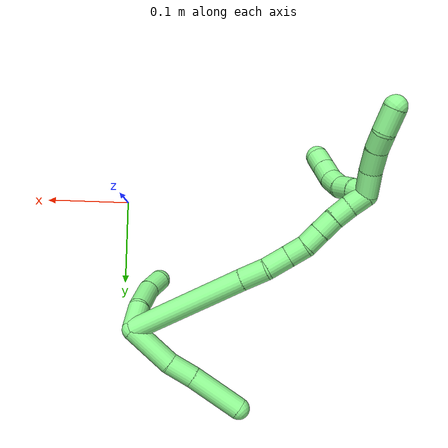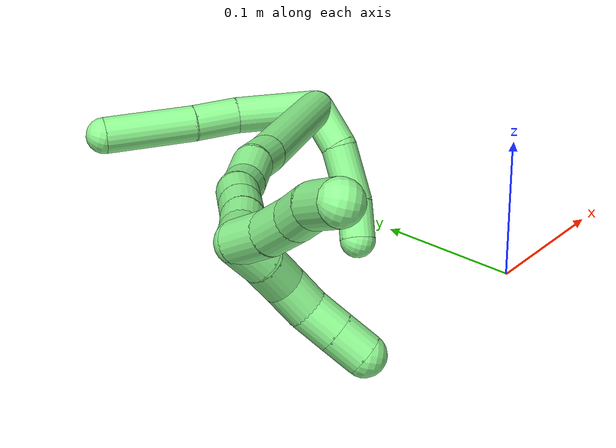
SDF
<sdf version="1.7">
 <world name="default">
  <model name="13">
   <static>0</static>
   <link name="13">
    <collision name="collision-cylinder-e_1_2_8">
     <pose>-0.004577 0.007889 0.026706 -0.287227 -0.162894 0.023607</pose>
     <geometry><cylinder><radius>0.0125</radius><length>0.056441</length></cylinder></geometry>
     <surface>
      <friction><ode><mu>1.16</mu><mu2>1.16</mu2><slip1>0</slip1><slip2>0</slip2></ode></friction>
      <contact><ode><kp>1e+06</kp><kd>1</kd><max_vel>0</max_vel><min_depth>0.001</min_depth></ode></contact>
     </surface>
    </collision>
    <visual name="visual-cylinder-e_1_2_8">
     <pose>-0.004577 0.007889 0.026706 -0.287227 -0.162894 0.023607</pose>
     <geometry><cylinder><radius>0.0125</radius><length>0.056441</length></cylinder></geometry>
     <material><ambient>0.564706 0.984314 0.572549 1</ambient></material>
    </visual>
    <collision name="collision-cylinder-e_2_8_9">
     <pose>-0.014571 0.018836 0.067608 -0.2122 -0.357113 0.038437</pose>
     <geometry><cylinder><radius>0.0125</radius><length>0.030998</length></cylinder></geometry>
     <surface>
      <friction><ode><mu>1.16</mu><mu2>1.16</mu2><slip1>0</slip1><slip2>0</slip2></ode></friction>
      <contact><ode><kp>1e+06</kp><kd>1</kd><max_vel>0</max_vel><min_depth>0.001</min_depth></ode></contact>
     </surface>
    </collision>
    <visual name="visual-cylinder-e_2_8_9">
     <pose>-0.014571 0.018836 0.067608 -0.2122 -0.357113 0.038437</pose>
     <geometry><cylinder><radius>0.0125</radius><length>0.030998</length></cylinder></geometry>
     <material><ambient>0.564706 0.984314 0.572549 1</ambient></material>
    </visual>
    <collision name="collision-cylinder-e_3_9_6">
     <pose>-0.028823 0.028352 0.111107 -0.216884 -0.286283 0.03138</pose>
     <geometry><cylinder><radius>0.0125</radius><length>0.062561</length></cylinder></geometry>
     <surface>
      <friction><ode><mu>1.16</mu><mu2>1.16</mu2><slip1>0</slip1><slip2>0</slip2></ode></friction>
      <contact><ode><kp>1e+06</kp><kd>1</kd><max_vel>0</max_vel><min_depth>0.001</min_depth></ode></contact>
     </surface>
    </collision>
    <visual name="visual-cylinder-e_3_9_6">
     <pose>-0.028823 0.028352 0.111107 -0.216884 -0.286283 0.03138</pose>
     <geometry><cylinder><radius>0.0125</radius><length>0.062561</length></cylinder></geometry>
     <material><ambient>0.564706 0.984314 0.572549 1</ambient></material>
    </visual>
    <collision name="collision-cylinder-e_1_2_10">
     <pose>-0.012711 0.003416 -0.009613 -2.8002 -0.894466 2.45159</pose>
     <geometry><cylinder><radius>0.0125</radius><length>0.032597</length></cylinder></geometry>
     <surface>
      <friction><ode><mu>1.16</mu><mu2>1.16</mu2><slip1>0</slip1><slip2>0</slip2></ode></friction>
      <contact><ode><kp>1e+06</kp><kd>1</kd><max_vel>0</max_vel><min_depth>0.001</min_depth></ode></contact>
     </surface>
    </collision>
    <visual name="visual-cylinder-e_1_2_10">
     <pose>-0.012711 0.003416 -0.009613 -2.8002 -0.894466 2.45159</pose>
     <geometry><cylinder><radius>0.0125</radius><length>0.032597</length></cylinder></geometry>
     <material><ambient>0.564706 0.984314 0.572549 1</ambient></material>
    </visual>
    <collision name="collision-cylinder-e_2_10_11">
     <pose>-0.040596 0.016667 -0.02826 -2.31372 -0.849057 1.59928</pose>
     <geometry><cylinder><radius>0.0125</radius><length>0.040429</length></cylinder></geometry>
     <surface>
      <friction><ode><mu>1.16</mu><mu2>1.16</mu2><slip1>0</slip1><slip2>0</slip2></ode></friction>
      <contact><ode><kp>1e+06</kp><kd>1</kd><max_vel>0</max_vel><min_depth>0.001</min_depth></ode></contact>
     </surface>
    </collision>
    <visual name="visual-cylinder-e_2_10_11">
     <pose>-0.040596 0.016667 -0.02826 -2.31372 -0.849057 1.59928</pose>
     <geometry><cylinder><radius>0.0125</radius><length>0.040429</length></cylinder></geometry>
     <material><ambient>0.564706 0.984314 0.572549 1</ambient></material>
    </visual>
    <collision name="collision-cylinder-e_3_11_5">
     <pose>-0.067594 0.032241 -0.040323 -2.05643 -1.06895 1.55238</pose>
     <geometry><cylinder><radius>0.0125</radius><length>0.026974</length></cylinder></geometry>
     <surface>
      <friction><ode><mu>1.16</mu><mu2>1.16</mu2><slip1>0</slip1><slip2>0</slip2></ode></friction>
      <contact><ode><kp>1e+06</kp><kd>1</kd><max_vel>0</max_vel><min_depth>0.001</min_depth></ode></contact>
     </surface>
    </collision>
    <visual name="visual-cylinder-e_3_11_5">
     <pose>-0.067594 0.032241 -0.040323 -2.05643 -1.06895 1.55238</pose>
     <geometry><cylinder><radius>0.0125</radius><length>0.026974</length></cylinder></geometry>
     <material><ambient>0.564706 0.984314 0.572549 1</ambient></material>
    </visual>
    <collision name="collision-cylinder-e_1_2_12">
     <pose>-0.055801 -0.030014 0.026552 0.84653 -0.947996 -0.454238</pose>
     <geometry><cylinder><radius>0.0125</radius><length>0.137398</length></cylinder></geometry>
     <surface>
      <friction><ode><mu>1.16</mu><mu2>1.16</mu2><slip1>0</slip1><slip2>0</slip2></ode></friction>
      <contact><ode><kp>1e+06</kp><kd>1</kd><max_vel>0</max_vel><min_depth>0.001</min_depth></ode></contact>
     </surface>
    </collision>
    <visual name="visual-cylinder-e_1_2_12">
     <pose>-0.055801 -0.030014 0.026552 0.84653 -0.947996 -0.454238</pose>
     <geometry><cylinder><radius>0.0125</radius><length>0.137398</length></cylinder></geometry>
     <material><ambient>0.564706 0.984314 0.572549 1</ambient></material>
    </visual>
    <collision name="collision-cylinder-e_2_12_13">
     <pose>-0.12314 -0.066909 0.059212 0.844784 -0.897673 -0.426346</pose>
     <geometry><cylinder><radius>0.0125</radius><length>0.029515</length></cylinder></geometry>
     <surface>
      <friction><ode><mu>1.16</mu><mu2>1.16</mu2><slip1>0</slip1><slip2>0</slip2></ode></friction>
      <contact><ode><kp>1e+06</kp><kd>1</kd><max_vel>0</max_vel><min_depth>0.001</min_depth></ode></contact>
     </surface>
    </collision>
    <visual name="visual-cylinder-e_2_12_13">
     <pose>-0.12314 -0.066909 0.059212 0.844784 -0.897673 -0.426346</pose>
     <geometry><cylinder><radius>0.0125</radius><length>0.029515</length></cylinder></geometry>
     <material><ambient>0.564706 0.984314 0.572549 1</ambient></material>
    </visual>
    <collision name="collision-cylinder-e_3_13_14">
     <pose>-0.147228 -0.078065 0.068742 0.895845 -1.15928 -0.609518</pose>
     <geometry><cylinder><radius>0.0125</radius><length>0.027384</length></cylinder></geometry>
     <surface>
      <friction><ode><mu>1.16</mu><mu2>1.16</mu2><slip1>0</slip1><slip2>0</slip2></ode></friction>
      <contact><ode><kp>1e+06</kp><kd>1</kd><max_vel>0</max_vel><min_depth>0.001</min_depth></ode></contact>
     </surface>
    </collision>
    <visual name="visual-cylinder-e_3_13_14">
     <pose>-0.147228 -0.078065 0.068742 0.895845 -1.15928 -0.609518</pose>
     <geometry><cylinder><radius>0.0125</radius><length>0.027384</length></cylinder></geometry>
     <material><ambient>0.564706 0.984314 0.572549 1</ambient></material>
    </visual>
    <collision name="collision-cylinder-e_4_14_15">
     <pose>-0.168622 -0.088114 0.075585 1.03588 -0.92177 -0.551485</pose>
     <geometry><cylinder><radius>0.0125</radius><length>0.022206</length></cylinder></geometry>
     <surface>
      <friction><ode><mu>1.16</mu><mu2>1.16</mu2><slip1>0</slip1><slip2>0</slip2></ode></friction>
      <contact><ode><kp>1e+06</kp><kd>1</kd><max_vel>0</max_vel><min_depth>0.001</min_depth></ode></contact>
     </surface>
    </collision>
    <visual name="visual-cylinder-e_4_14_15">
     <pose>-0.168622 -0.088114 0.075585 1.03588 -0.92177 -0.551485</pose>
     <geometry><cylinder><radius>0.0125</radius><length>0.022206</length></cylinder></geometry>
     <material><ambient>0.564706 0.984314 0.572549 1</ambient></material>
    </visual>
    <collision name="collision-cylinder-e_5_15_16">
     <pose>-0.186389 -0.098983 0.079422 1.48942 -1.05041 -0.9812</pose>
     <geometry><cylinder><radius>0.0125</radius><length>0.020565</length></cylinder></geometry>
     <surface>
      <friction><ode><mu>1.16</mu><mu2>1.16</mu2><slip1>0</slip1><slip2>0</slip2></ode></friction>
      <contact><ode><kp>1e+06</kp><kd>1</kd><max_vel>0</max_vel><min_depth>0.001</min_depth></ode></contact>
     </surface>
    </collision>
    <visual name="visual-cylinder-e_5_15_16">
     <pose>-0.186389 -0.098983 0.079422 1.48942 -1.05041 -0.9812</pose>
     <geometry><cylinder><radius>0.0125</radius><length>0.020565</length></cylinder></geometry>
     <material><ambient>0.564706 0.984314 0.572549 1</ambient></material>
    </visual>
    <collision name="collision-cylinder-e_6_16_17">
     <pose>-0.20431 -0.109367 0.080399 1.46502 -1.03712 -0.948415</pose>
     <geometry><cylinder><radius>0.0125</radius><length>0.020907</length></cylinder></geometry>
     <surface>
      <friction><ode><mu>1.16</mu><mu2>1.16</mu2><slip1>0</slip1><slip2>0</slip2></ode></friction>
      <contact><ode><kp>1e+06</kp><kd>1</kd><max_vel>0</max_vel><min_depth>0.001</min_depth></ode></contact>
     </surface>
    </collision>
    <visual name="visual-cylinder-e_6_16_17">
     <pose>-0.20431 -0.109367 0.080399 1.46502 -1.03712 -0.948415</pose>
     <geometry><cylinder><radius>0.0125</radius><length>0.020907</length></cylinder></geometry>
     <material><ambient>0.564706 0.984314 0.572549 1</ambient></material>
    </visual>
    <collision name="collision-cylinder-e_7_17_18">
     <pose>-0.222533 -0.119364 0.082447 1.26504 -1.07919 -0.827285</pose>
     <geometry><cylinder><radius>0.0125</radius><length>0.020925</length></cylinder></geometry>
     <surface>
      <friction><ode><mu>1.16</mu><mu2>1.16</mu2><slip1>0</slip1><slip2>0</slip2></ode></friction>
      <contact><ode><kp>1e+06</kp><kd>1</kd><max_vel>0</max_vel><min_depth>0.001</min_depth></ode></contact>
     </surface>
    </collision>
    <visual name="visual-cylinder-e_7_17_18">
     <pose>-0.222533 -0.119364 0.082447 1.26504 -1.07919 -0.827285</pose>
     <geometry><cylinder><radius>0.0125</radius><length>0.020925</length></cylinder></geometry>
     <material><ambient>0.564706 0.984314 0.572549 1</ambient></material>
    </visual>
    <collision name="collision-cylinder-e_8_18_1">
     <pose>-0.240339 -0.129671 0.086448 1.14854 -0.950054 -0.642467</pose>
     <geometry><cylinder><radius>0.0125</radius><length>0.0211</length></cylinder></geometry>
     <surface>
      <friction><ode><mu>1.16</mu><mu2>1.16</mu2><slip1>0</slip1><slip2>0</slip2></ode></friction>
      <contact><ode><kp>1e+06</kp><kd>1</kd><max_vel>0</max_vel><min_depth>0.001</min_depth></ode></contact>
     </surface>
    </collision>
    <visual name="visual-cylinder-e_8_18_1">
     <pose>-0.240339 -0.129671 0.086448 1.14854 -0.950054 -0.642467</pose>
     <geometry><cylinder><radius>0.0125</radius><length>0.0211</length></cylinder></geometry>
     <material><ambient>0.564706 0.984314 0.572549 1</ambient></material>
    </visual>
    <collision name="collision-cylinder-e_1_1_19">
     <pose>-0.253645 -0.147148 0.083806 1.98036 -0.349824 -0.526242</pose>
     <geometry><cylinder><radius>0.0125</radius><length>0.027572</length></cylinder></geometry>
     <surface>
      <friction><ode><mu>1.16</mu><mu2>1.16</mu2><slip1>0</slip1><slip2>0</slip2></ode></friction>
      <contact><ode><kp>1e+06</kp><kd>1</kd><max_vel>0</max_vel><min_depth>0.001</min_depth></ode></contact>
     </surface>
    </collision>
    <visual name="visual-cylinder-e_1_1_19">
     <pose>-0.253645 -0.147148 0.083806 1.98036 -0.349824 -0.526242</pose>
     <geometry><cylinder><radius>0.0125</radius><length>0.027572</length></cylinder></geometry>
     <material><ambient>0.564706 0.984314 0.572549 1</ambient></material>
    </visual>
    <collision name="collision-cylinder-e_2_19_20">
     <pose>-0.261923 -0.170683 0.075353 1.84634 -0.285328 -0.375295</pose>
     <geometry><cylinder><radius>0.0125</radius><length>0.025245</length></cylinder></geometry>
     <surface>
      <friction><ode><mu>1.16</mu><mu2>1.16</mu2><slip1>0</slip1><slip2>0</slip2></ode></friction>
      <contact><ode><kp>1e+06</kp><kd>1</kd><max_vel>0</max_vel><min_depth>0.001</min_depth></ode></contact>
     </surface>
    </collision>
    <visual name="visual-cylinder-e_2_19_20">
     <pose>-0.261923 -0.170683 0.075353 1.84634 -0.285328 -0.375295</pose>
     <geometry><cylinder><radius>0.0125</radius><length>0.025245</length></cylinder></geometry>
     <material><ambient>0.564706 0.984314 0.572549 1</ambient></material>
    </visual>
    <collision name="collision-cylinder-e_3_20_21">
     <pose>-0.268646 -0.191858 0.07059 1.72379 -0.317927 -0.369597</pose>
     <geometry><cylinder><radius>0.0125</radius><length>0.02028</length></cylinder></geometry>
     <surface>
      <friction><ode><mu>1.16</mu><mu2>1.16</mu2><slip1>0</slip1><slip2>0</slip2></ode></friction>
      <contact><ode><kp>1e+06</kp><kd>1</kd><max_vel>0</max_vel><min_depth>0.001</min_depth></ode></contact>
     </surface>
    </collision>
    <visual name="visual-cylinder-e_3_20_21">
     <pose>-0.268646 -0.191858 0.07059 1.72379 -0.317927 -0.369597</pose>
     <geometry><cylinder><radius>0.0125</radius><length>0.02028</length></cylinder></geometry>
     <material><ambient>0.564706 0.984314 0.572549 1</ambient></material>
    </visual>
    <collision name="collision-cylinder-e_4_21_4">
     <pose>-0.27899 -0.2124 0.066301 1.82134 -0.562548 -0.712611</pose>
     <geometry><cylinder><radius>0.0125</radius><length>0.026904</length></cylinder></geometry>
     <surface>
      <friction><ode><mu>1.16</mu><mu2>1.16</mu2><slip1>0</slip1><slip2>0</slip2></ode></friction>
      <contact><ode><kp>1e+06</kp><kd>1</kd><max_vel>0</max_vel><min_depth>0.001</min_depth></ode></contact>
     </surface>
    </collision>
    <visual name="visual-cylinder-e_4_21_4">
     <pose>-0.27899 -0.2124 0.066301 1.82134 -0.562548 -0.712611</pose>
     <geometry><cylinder><radius>0.0125</radius><length>0.026904</length></cylinder></geometry>
     <material><ambient>0.564706 0.984314 0.572549 1</ambient></material>
    </visual>
    <collision name="collision-cylinder-e_1_1_22">
     <pose>-0.249787 -0.13018 0.080398 -2.60557 -0.086775 0.313584</pose>
     <geometry><cylinder><radius>0.0125</radius><length>0.02</length></cylinder></geometry>
     <surface>
      <friction><ode><mu>1.16</mu><mu2>1.16</mu2><slip1>0</slip1><slip2>0</slip2></ode></friction>
      <contact><ode><kp>1e+06</kp><kd>1</kd><max_vel>0</max_vel><min_depth>0.001</min_depth></ode></contact>
     </surface>
    </collision>
    <visual name="visual-cylinder-e_1_1_22">
     <pose>-0.249787 -0.13018 0.080398 -2.60557 -0.086775 0.313584</pose>
     <geometry><cylinder><radius>0.0125</radius><length>0.02</length></cylinder></geometry>
     <material><ambient>0.564706 0.984314 0.572549 1</ambient></material>
    </visual>
    <collision name="collision-cylinder-e_2_22_23">
     <pose>-0.251024 -0.118758 0.064104 -2.45503 -0.037016 0.103479</pose>
     <geometry><cylinder><radius>0.0125</radius><length>0.02</length></cylinder></geometry>
     <surface>
      <friction><ode><mu>1.16</mu><mu2>1.16</mu2><slip1>0</slip1><slip2>0</slip2></ode></friction>
      <contact><ode><kp>1e+06</kp><kd>1</kd><max_vel>0</max_vel><min_depth>0.001</min_depth></ode></contact>
     </surface>
    </collision>
    <visual name="visual-cylinder-e_2_22_23">
     <pose>-0.251024 -0.118758 0.064104 -2.45503 -0.037016 0.103479</pose>
     <geometry><cylinder><radius>0.0125</radius><length>0.02</length></cylinder></geometry>
     <material><ambient>0.564706 0.984314 0.572549 1</ambient></material>
    </visual>
    <collision name="collision-cylinder-e_3_23_24">
     <pose>-0.254624 -0.107892 0.048066 -2.64224 -0.32886 1.15375</pose>
     <geometry><cylinder><radius>0.0125</radius><length>0.02</length></cylinder></geometry>
     <surface>
      <friction><ode><mu>1.16</mu><mu2>1.16</mu2><slip1>0</slip1><slip2>0</slip2></ode></friction>
      <contact><ode><kp>1e+06</kp><kd>1</kd><max_vel>0</max_vel><min_depth>0.001</min_depth></ode></contact>
     </surface>
    </collision>
    <visual name="visual-cylinder-e_3_23_24">
     <pose>-0.254624 -0.107892 0.048066 -2.64224 -0.32886 1.15375</pose>
     <geometry><cylinder><radius>0.0125</radius><length>0.02</length></cylinder></geometry>
     <material><ambient>0.564706 0.984314 0.572549 1</ambient></material>
    </visual>
    <collision name="collision-cylinder-e_4_24_25">
     <pose>-0.262169 -0.101326 0.030969 -2.91419 -0.446212 2.20901</pose>
     <geometry><cylinder><radius>0.0125</radius><length>0.02</length></cylinder></geometry>
     <surface>
      <friction><ode><mu>1.16</mu><mu2>1.16</mu2><slip1>0</slip1><slip2>0</slip2></ode></friction>
      <contact><ode><kp>1e+06</kp><kd>1</kd><max_vel>0</max_vel><min_depth>0.001</min_depth></ode></contact>
     </surface>
    </collision>
    <visual name="visual-cylinder-e_4_24_25">
     <pose>-0.262169 -0.101326 0.030969 -2.91419 -0.446212 2.20901</pose>
     <geometry><cylinder><radius>0.0125</radius><length>0.02</length></cylinder></geometry>
     <material><ambient>0.564706 0.984314 0.572549 1</ambient></material>
    </visual>
    <collision name="collision-cylinder-e_5_25_3">
     <pose>-0.270748 -0.097283 0.013361 -2.91764 -0.440528 2.21075</pose>
     <geometry><cylinder><radius>0.0125</radius><length>0.02</length></cylinder></geometry>
     <surface>
      <friction><ode><mu>1.16</mu><mu2>1.16</mu2><slip1>0</slip1><slip2>0</slip2></ode></friction>
      <contact><ode><kp>1e+06</kp><kd>1</kd><max_vel>0</max_vel><min_depth>0.001</min_depth></ode></contact>
     </surface>
    </collision>
    <visual name="visual-cylinder-e_5_25_3">
     <pose>-0.270748 -0.097283 0.013361 -2.91764 -0.440528 2.21075</pose>
     <geometry><cylinder><radius>0.0125</radius><length>0.02</length></cylinder></geometry>
     <material><ambient>0.564706 0.984314 0.572549 1</ambient></material>
    </visual>
    <collision name="collision-sphere-3">
     <pose>-0.275013 -0.095275 0.004542 0 -0 0</pose>
     <geometry><sphere><radius>0.0125</radius></sphere></geometry>
     <surface>
      <friction><ode><mu>1.16</mu><mu2>1.16</mu2><slip1>0</slip1><slip2>0</slip2></ode></friction>
      <contact><ode><kp>1e+06</kp><kd>1</kd><max_vel>0</max_vel><min_depth>0.001</min_depth></ode></contact>
     </surface>
    </collision>
    <visual name="visual-sphere-3">
     <pose>-0.275013 -0.095275 0.004542 0 -0 0</pose>
     <geometry><sphere><radius>0.0125</radius></sphere></geometry>
     <material><ambient>0.564706 0.984314 0.572549 1</ambient></material>
    </visual>
    <collision name="collision-sphere-25">
     <pose>-0.266484 -0.099292 0.02218 0 -0 0</pose>
     <geometry><sphere><radius>0.0125</radius></sphere></geometry>
     <surface>
      <friction><ode><mu>1.16</mu><mu2>1.16</mu2><slip1>0</slip1><slip2>0</slip2></ode></friction>
      <contact><ode><kp>1e+06</kp><kd>1</kd><max_vel>0</max_vel><min_depth>0.001</min_depth></ode></contact>
     </surface>
    </collision>
    <visual name="visual-sphere-25">
     <pose>-0.266484 -0.099292 0.02218 0 -0 0</pose>
     <geometry><sphere><radius>0.0125</radius></sphere></geometry>
     <material><ambient>0.564706 0.984314 0.572549 1</ambient></material>
    </visual>
    <collision name="collision-sphere-24">
     <pose>-0.257853 -0.10336 0.039758 0 -0 0</pose>
     <geometry><sphere><radius>0.0125</radius></sphere></geometry>
     <surface>
      <friction><ode><mu>1.16</mu><mu2>1.16</mu2><slip1>0</slip1><slip2>0</slip2></ode></friction>
      <contact><ode><kp>1e+06</kp><kd>1</kd><max_vel>0</max_vel><min_depth>0.001</min_depth></ode></contact>
     </surface>
    </collision>
    <visual name="visual-sphere-24">
     <pose>-0.257853 -0.10336 0.039758 0 -0 0</pose>
     <geometry><sphere><radius>0.0125</radius></sphere></geometry>
     <material><ambient>0.564706 0.984314 0.572549 1</ambient></material>
    </visual>
    <collision name="collision-sphere-23">
     <pose>-0.251394 -0.112423 0.056375 0 -0 0</pose>
     <geometry><sphere><radius>0.0125</radius></sphere></geometry>
     <surface>
      <friction><ode><mu>1.16</mu><mu2>1.16</mu2><slip1>0</slip1><slip2>0</slip2></ode></friction>
      <contact><ode><kp>1e+06</kp><kd>1</kd><max_vel>0</max_vel><min_depth>0.001</min_depth></ode></contact>
     </surface>
    </collision>
    <visual name="visual-sphere-23">
     <pose>-0.251394 -0.112423 0.056375 0 -0 0</pose>
     <geometry><sphere><radius>0.0125</radius></sphere></geometry>
     <material><ambient>0.564706 0.984314 0.572549 1</ambient></material>
    </visual>
    <collision name="collision-sphere-22">
     <pose>-0.250654 -0.125092 0.071833 0 -0 0</pose>
     <geometry><sphere><radius>0.0125</radius></sphere></geometry>
     <surface>
      <friction><ode><mu>1.16</mu><mu2>1.16</mu2><slip1>0</slip1><slip2>0</slip2></ode></friction>
      <contact><ode><kp>1e+06</kp><kd>1</kd><max_vel>0</max_vel><min_depth>0.001</min_depth></ode></contact>
     </surface>
    </collision>
    <visual name="visual-sphere-22">
     <pose>-0.250654 -0.125092 0.071833 0 -0 0</pose>
     <geometry><sphere><radius>0.0125</radius></sphere></geometry>
     <material><ambient>0.564706 0.984314 0.572549 1</ambient></material>
    </visual>
    <collision name="collision-sphere-4">
     <pose>-0.286164 -0.223424 0.06348 0 -0 0</pose>
     <geometry><sphere><radius>0.0125</radius></sphere></geometry>
     <surface>
      <friction><ode><mu>1.16</mu><mu2>1.16</mu2><slip1>0</slip1><slip2>0</slip2></ode></friction>
      <contact><ode><kp>1e+06</kp><kd>1</kd><max_vel>0</max_vel><min_depth>0.001</min_depth></ode></contact>
     </surface>
    </collision>
    <visual name="visual-sphere-4">
     <pose>-0.286164 -0.223424 0.06348 0 -0 0</pose>
     <geometry><sphere><radius>0.0125</radius></sphere></geometry>
     <material><ambient>0.564706 0.984314 0.572549 1</ambient></material>
    </visual>
    <collision name="collision-sphere-21">
     <pose>-0.271815 -0.201377 0.069122 0 -0 0</pose>
     <geometry><sphere><radius>0.0125</radius></sphere></geometry>
     <surface>
      <friction><ode><mu>1.16</mu><mu2>1.16</mu2><slip1>0</slip1><slip2>0</slip2></ode></friction>
      <contact><ode><kp>1e+06</kp><kd>1</kd><max_vel>0</max_vel><min_depth>0.001</min_depth></ode></contact>
     </surface>
    </collision>
    <visual name="visual-sphere-21">
     <pose>-0.271815 -0.201377 0.069122 0 -0 0</pose>
     <geometry><sphere><radius>0.0125</radius></sphere></geometry>
     <material><ambient>0.564706 0.984314 0.572549 1</ambient></material>
    </visual>
    <collision name="collision-sphere-20">
     <pose>-0.265476 -0.182338 0.072058 0 -0 0</pose>
     <geometry><sphere><radius>0.0125</radius></sphere></geometry>
     <surface>
      <friction><ode><mu>1.16</mu><mu2>1.16</mu2><slip1>0</slip1><slip2>0</slip2></ode></friction>
      <contact><ode><kp>1e+06</kp><kd>1</kd><max_vel>0</max_vel><min_depth>0.001</min_depth></ode></contact>
     </surface>
    </collision>
    <visual name="visual-sphere-20">
     <pose>-0.265476 -0.182338 0.072058 0 -0 0</pose>
     <geometry><sphere><radius>0.0125</radius></sphere></geometry>
     <material><ambient>0.564706 0.984314 0.572549 1</ambient></material>
    </visual>
    <collision name="collision-sphere-11">
     <pose>-0.05577 0.026504 -0.037295 0 -0 0</pose>
     <geometry><sphere><radius>0.0125</radius></sphere></geometry>
     <surface>
      <friction><ode><mu>1.16</mu><mu2>1.16</mu2><slip1>0</slip1><slip2>0</slip2></ode></friction>
      <contact><ode><kp>1e+06</kp><kd>1</kd><max_vel>0</max_vel><min_depth>0.001</min_depth></ode></contact>
     </surface>
    </collision>
    <visual name="visual-sphere-11">
     <pose>-0.05577 0.026504 -0.037295 0 -0 0</pose>
     <geometry><sphere><radius>0.0125</radius></sphere></geometry>
     <material><ambient>0.564706 0.984314 0.572549 1</ambient></material>
    </visual>
    <collision name="collision-sphere-10">
     <pose>-0.025422 0.006831 -0.019226 0 -0 0</pose>
     <geometry><sphere><radius>0.0125</radius></sphere></geometry>
     <surface>
      <friction><ode><mu>1.16</mu><mu2>1.16</mu2><slip1>0</slip1><slip2>0</slip2></ode></friction>
      <contact><ode><kp>1e+06</kp><kd>1</kd><max_vel>0</max_vel><min_depth>0.001</min_depth></ode></contact>
     </surface>
    </collision>
    <visual name="visual-sphere-10">
     <pose>-0.025422 0.006831 -0.019226 0 -0 0</pose>
     <geometry><sphere><radius>0.0125</radius></sphere></geometry>
     <material><ambient>0.564706 0.984314 0.572549 1</ambient></material>
    </visual>
    <collision name="collision-sphere-6">
     <pose>-0.037656 0.034809 0.140412 0 -0 0</pose>
     <geometry><sphere><radius>0.0125</radius></sphere></geometry>
     <surface>
      <friction><ode><mu>1.16</mu><mu2>1.16</mu2><slip1>0</slip1><slip2>0</slip2></ode></friction>
      <contact><ode><kp>1e+06</kp><kd>1</kd><max_vel>0</max_vel><min_depth>0.001</min_depth></ode></contact>
     </surface>
    </collision>
    <visual name="visual-sphere-6">
     <pose>-0.037656 0.034809 0.140412 0 -0 0</pose>
     <geometry><sphere><radius>0.0125</radius></sphere></geometry>
     <material><ambient>0.564706 0.984314 0.572549 1</ambient></material>
    </visual>
    <collision name="collision-sphere-9">
     <pose>-0.019989 0.021894 0.081803 0 -0 0</pose>
     <geometry><sphere><radius>0.0125</radius></sphere></geometry>
     <surface>
      <friction><ode><mu>1.16</mu><mu2>1.16</mu2><slip1>0</slip1><slip2>0</slip2></ode></friction>
      <contact><ode><kp>1e+06</kp><kd>1</kd><max_vel>0</max_vel><min_depth>0.001</min_depth></ode></contact>
     </surface>
    </collision>
    <visual name="visual-sphere-9">
     <pose>-0.019989 0.021894 0.081803 0 -0 0</pose>
     <geometry><sphere><radius>0.0125</radius></sphere></geometry>
     <material><ambient>0.564706 0.984314 0.572549 1</ambient></material>
    </visual>
    <collision name="collision-sphere-2">
     <geometry><sphere><radius>0.0125</radius></sphere></geometry>
     <surface>
      <friction><ode><mu>1.16</mu><mu2>1.16</mu2><slip1>0</slip1><slip2>0</slip2></ode></friction>
      <contact><ode><kp>1e+06</kp><kd>1</kd><max_vel>0</max_vel><min_depth>0.001</min_depth></ode></contact>
     </surface>
    </collision>
    <visual name="visual-sphere-2">
     <geometry><sphere><radius>0.0125</radius></sphere></geometry>
     <material><ambient>0.564706 0.984314 0.572549 1</ambient></material>
    </visual>
    <collision name="collision-sphere-19">
     <pose>-0.25837 -0.159028 0.078648 0 -0 0</pose>
     <geometry><sphere><radius>0.0125</radius></sphere></geometry>
     <surface>
      <friction><ode><mu>1.16</mu><mu2>1.16</mu2><slip1>0</slip1><slip2>0</slip2></ode></friction>
      <contact><ode><kp>1e+06</kp><kd>1</kd><max_vel>0</max_vel><min_depth>0.001</min_depth></ode></contact>
     </surface>
    </collision>
    <visual name="visual-sphere-19">
     <pose>-0.25837 -0.159028 0.078648 0 -0 0</pose>
     <geometry><sphere><radius>0.0125</radius></sphere></geometry>
     <material><ambient>0.564706 0.984314 0.572549 1</ambient></material>
    </visual>
    <collision name="collision-sphere-8">
     <pose>-0.009153 0.015778 0.053412 0 -0 0</pose>
     <geometry><sphere><radius>0.0125</radius></sphere></geometry>
     <surface>
      <friction><ode><mu>1.16</mu><mu2>1.16</mu2><slip1>0</slip1><slip2>0</slip2></ode></friction>
      <contact><ode><kp>1e+06</kp><kd>1</kd><max_vel>0</max_vel><min_depth>0.001</min_depth></ode></contact>
     </surface>
    </collision>
    <visual name="visual-sphere-8">
     <pose>-0.009153 0.015778 0.053412 0 -0 0</pose>
     <geometry><sphere><radius>0.0125</radius></sphere></geometry>
     <material><ambient>0.564706 0.984314 0.572549 1</ambient></material>
    </visual>
    <collision name="collision-sphere-5">
     <pose>-0.079418 0.037979 -0.043351 0 -0 0</pose>
     <geometry><sphere><radius>0.0125</radius></sphere></geometry>
     <surface>
      <friction><ode><mu>1.16</mu><mu2>1.16</mu2><slip1>0</slip1><slip2>0</slip2></ode></friction>
      <contact><ode><kp>1e+06</kp><kd>1</kd><max_vel>0</max_vel><min_depth>0.001</min_depth></ode></contact>
     </surface>
    </collision>
    <visual name="visual-sphere-5">
     <pose>-0.079418 0.037979 -0.043351 0 -0 0</pose>
     <geometry><sphere><radius>0.0125</radius></sphere></geometry>
     <material><ambient>0.564706 0.984314 0.572549 1</ambient></material>
    </visual>
    <collision name="collision-sphere-12">
     <pose>-0.111602 -0.060028 0.053104 0 -0 0</pose>
     <geometry><sphere><radius>0.0125</radius></sphere></geometry>
     <surface>
      <friction><ode><mu>1.16</mu><mu2>1.16</mu2><slip1>0</slip1><slip2>0</slip2></ode></friction>
      <contact><ode><kp>1e+06</kp><kd>1</kd><max_vel>0</max_vel><min_depth>0.001</min_depth></ode></contact>
     </surface>
    </collision>
    <visual name="visual-sphere-12">
     <pose>-0.111602 -0.060028 0.053104 0 -0 0</pose>
     <geometry><sphere><radius>0.0125</radius></sphere></geometry>
     <material><ambient>0.564706 0.984314 0.572549 1</ambient></material>
    </visual>
    <collision name="collision-sphere-13">
     <pose>-0.134679 -0.073789 0.06532 0 -0 0</pose>
     <geometry><sphere><radius>0.0125</radius></sphere></geometry>
     <surface>
      <friction><ode><mu>1.16</mu><mu2>1.16</mu2><slip1>0</slip1><slip2>0</slip2></ode></friction>
      <contact><ode><kp>1e+06</kp><kd>1</kd><max_vel>0</max_vel><min_depth>0.001</min_depth></ode></contact>
     </surface>
    </collision>
    <visual name="visual-sphere-13">
     <pose>-0.134679 -0.073789 0.06532 0 -0 0</pose>
     <geometry><sphere><radius>0.0125</radius></sphere></geometry>
     <material><ambient>0.564706 0.984314 0.572549 1</ambient></material>
    </visual>
    <collision name="collision-sphere-14">
     <pose>-0.159777 -0.082341 0.072164 0 -0 0</pose>
     <geometry><sphere><radius>0.0125</radius></sphere></geometry>
     <surface>
      <friction><ode><mu>1.16</mu><mu2>1.16</mu2><slip1>0</slip1><slip2>0</slip2></ode></friction>
      <contact><ode><kp>1e+06</kp><kd>1</kd><max_vel>0</max_vel><min_depth>0.001</min_depth></ode></contact>
     </surface>
    </collision>
    <visual name="visual-sphere-14">
     <pose>-0.159777 -0.082341 0.072164 0 -0 0</pose>
     <geometry><sphere><radius>0.0125</radius></sphere></geometry>
     <material><ambient>0.564706 0.984314 0.572549 1</ambient></material>
    </visual>
    <collision name="collision-sphere-15">
     <pose>-0.177467 -0.093887 0.079006 0 -0 0</pose>
     <geometry><sphere><radius>0.0125</radius></sphere></geometry>
     <surface>
      <friction><ode><mu>1.16</mu><mu2>1.16</mu2><slip1>0</slip1><slip2>0</slip2></ode></friction>
      <contact><ode><kp>1e+06</kp><kd>1</kd><max_vel>0</max_vel><min_depth>0.001</min_depth></ode></contact>
     </surface>
    </collision>
    <visual name="visual-sphere-15">
     <pose>-0.177467 -0.093887 0.079006 0 -0 0</pose>
     <geometry><sphere><radius>0.0125</radius></sphere></geometry>
     <material><ambient>0.564706 0.984314 0.572549 1</ambient></material>
    </visual>
    <collision name="collision-sphere-16">
     <pose>-0.19531 -0.104079 0.079837 0 -0 0</pose>
     <geometry><sphere><radius>0.0125</radius></sphere></geometry>
     <surface>
      <friction><ode><mu>1.16</mu><mu2>1.16</mu2><slip1>0</slip1><slip2>0</slip2></ode></friction>
      <contact><ode><kp>1e+06</kp><kd>1</kd><max_vel>0</max_vel><min_depth>0.001</min_depth></ode></contact>
     </surface>
    </collision>
    <visual name="visual-sphere-16">
     <pose>-0.19531 -0.104079 0.079837 0 -0 0</pose>
     <geometry><sphere><radius>0.0125</radius></sphere></geometry>
     <material><ambient>0.564706 0.984314 0.572549 1</ambient></material>
    </visual>
    <collision name="collision-sphere-17">
     <pose>-0.21331 -0.114655 0.08096 0 -0 0</pose>
     <geometry><sphere><radius>0.0125</radius></sphere></geometry>
     <surface>
      <friction><ode><mu>1.16</mu><mu2>1.16</mu2><slip1>0</slip1><slip2>0</slip2></ode></friction>
      <contact><ode><kp>1e+06</kp><kd>1</kd><max_vel>0</max_vel><min_depth>0.001</min_depth></ode></contact>
     </surface>
    </collision>
    <visual name="visual-sphere-17">
     <pose>-0.21331 -0.114655 0.08096 0 -0 0</pose>
     <geometry><sphere><radius>0.0125</radius></sphere></geometry>
     <material><ambient>0.564706 0.984314 0.572549 1</ambient></material>
    </visual>
    <collision name="collision-sphere-18">
     <pose>-0.231757 -0.124074 0.083933 0 -0 0</pose>
     <geometry><sphere><radius>0.0125</radius></sphere></geometry>
     <surface>
      <friction><ode><mu>1.16</mu><mu2>1.16</mu2><slip1>0</slip1><slip2>0</slip2></ode></friction>
      <contact><ode><kp>1e+06</kp><kd>1</kd><max_vel>0</max_vel><min_depth>0.001</min_depth></ode></contact>
     </surface>
    </collision>
    <visual name="visual-sphere-18">
     <pose>-0.231757 -0.124074 0.083933 0 -0 0</pose>
     <geometry><sphere><radius>0.0125</radius></sphere></geometry>
     <material><ambient>0.564706 0.984314 0.572549 1</ambient></material>
    </visual>
    <collision name="collision-sphere-1">
     <pose>-0.24892 -0.135268 0.088963 0 -0 0</pose>
     <geometry><sphere><radius>0.0125</radius></sphere></geometry>
     <surface>
      <friction><ode><mu>1.16</mu><mu2>1.16</mu2><slip1>0</slip1><slip2>0</slip2></ode></friction>
      <contact><ode><kp>1e+06</kp><kd>1</kd><max_vel>0</max_vel><min_depth>0.001</min_depth></ode></contact>
     </surface>
    </collision>
    <visual name="visual-sphere-1">
     <pose>-0.24892 -0.135268 0.088963 0 -0 0</pose>
     <geometry><sphere><radius>0.0125</radius></sphere></geometry>
     <material><ambient>0.564706 0.984314 0.572549 1</ambient></material>
    </visual>
    <inertial>
     <pose>-0.127504 -0.059162 0.047996 0 -0 0</pose>
     <mass>0.75</mass>
     <inertia>
      <ixx>8.5e-05</ixx>
      <ixy>0</ixy>
      <ixz>0</ixz>
      <iyy>0.000193</iyy>
      <iyz>0</iyz>
      <izz>0.000317</izz>
     </inertia>
    </inertial>
   </link>
   <pose>-0.018744 0.153072 0.08727 -1.23555 -0.371332 0.694852</pose>
  </model>
 </world>
</sdf>
